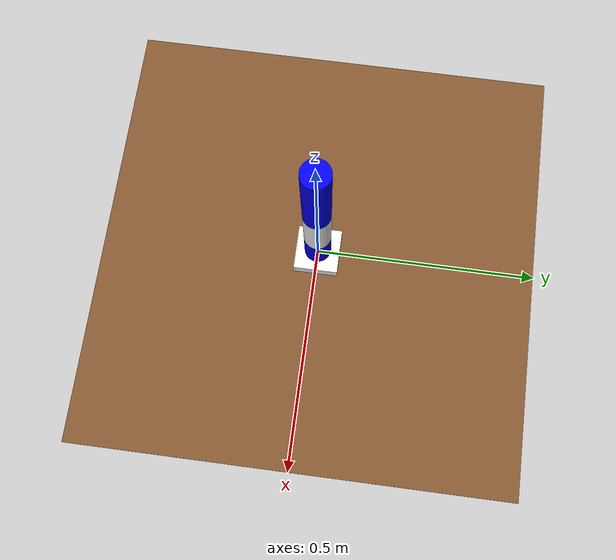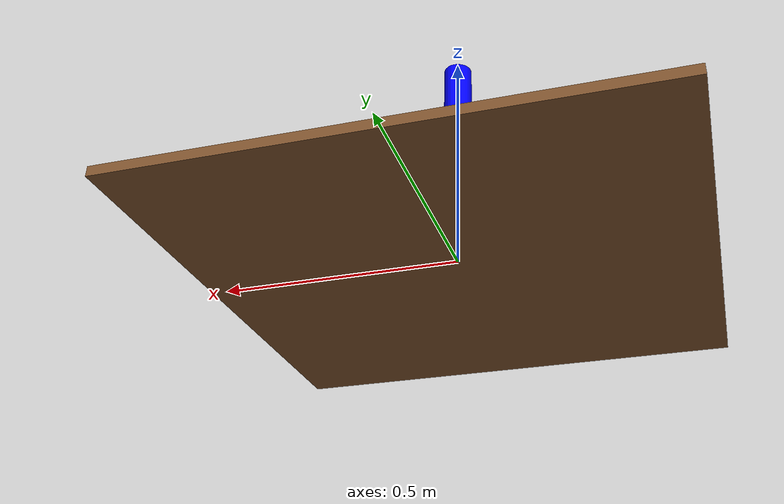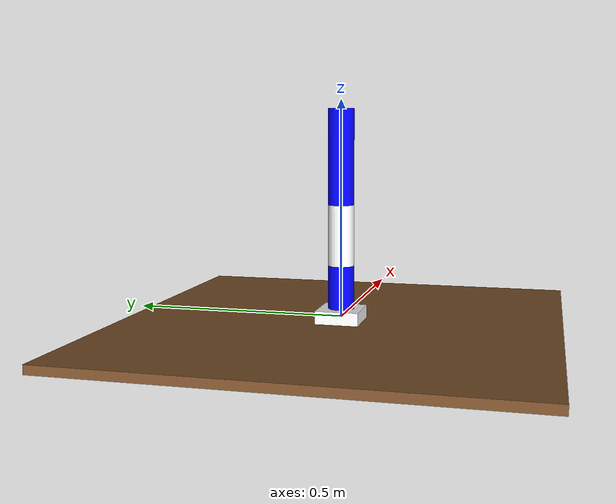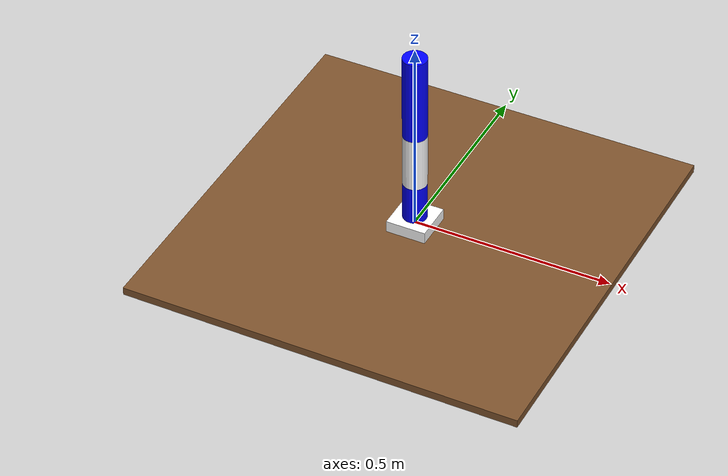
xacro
<?xml version="1.0"?>
<robot name="" xmlns:xacro="http://ros.org/wiki/xacro">

    <!-- Defining the colors used in this robot -->
    <material name="Black">
        <color rgba="0 0 0 1"/>
    </material>

    <material name="White">
        <color rgba="1 1 1 1"/>
    </material>

    <material name="Blue">
        <color rgba="0 0 1 1"/>
    </material>

    <material name="Red">
        <color rgba="1 0 0 1"/>
    </material>

    <!-- Constants -->
    <xacro:property name="M_PI" value="3.14159"/>

    <!-- link1 properties -->
    <xacro:property name="link1_width" value="0.03" />
    <xacro:property name="link1_len" value="0.10" />

    <!-- link2 properties -->
    <xacro:property name="link2_width" value="0.03" />
    <xacro:property name="link2_len" value="0.14" />

    <!-- link3 properties -->
    <xacro:property name="link3_width" value="0.03" />
    <xacro:property name="link3_len" value="0.22" />

    <!-- link4 properties -->
    <xacro:property name="link4_width" value="0.025" />
    <xacro:property name="link4_len" value="0.06" />

    <!-- link5 properties -->
    <xacro:property name="link5_width" value="0.03" />
    <xacro:property name="link5_len" value="0.06" />

    <!-- link6 properties -->
    <xacro:property name="link6_width" value="0.04" />
    <xacro:property name="link6_len" value="0.02" />

    <!-- Left gripper -->
    <xacro:property name="left_gripper_len" value="0.08" />
    <xacro:property name="left_gripper_width" value="0.01" />
    <xacro:property name="left_gripper_height" value="0.01" />

    <!-- Right gripper -->
    <xacro:property name="right_gripper_len" value="0.08" />
    <xacro:property name="right_gripper_width" value="0.01" />
    <xacro:property name="right_gripper_height" value="0.01" />

    <!-- Gripper frame -->
    <xacro:property name="grasp_frame_radius" value="0.001" />

    <!-- Inertial matrix -->
    <xacro:macro name="inertial_matrix" params="mass">
        <inertial>
            <mass value="${mass}" />
            <inertia ixx="1.0" ixy="0.0" ixz="0.0" iyy="0.5" iyz="0.0" izz="1.0" />
        </inertial>
    </xacro:macro>

    <!-- ///////////////////////////////////////   bottom_joint   ////////////////////////////////////////// -->
    <joint name="bottom_joint" type="fixed">
        <origin xyz="0 0 0" rpy="0 0 0" />
        <parent link="base_link"/>
        <child link="bottom_link"/>
    </joint>
    <link name="bottom_link">
        <visual>
              <origin xyz=" 0 0 -0.02"  rpy="0 0 0"/>
                  <geometry>
                       <box size="1 1 0.02" />
                  </geometry>
              <material name="Brown" />
        </visual>
        <collision>
            <origin xyz=" 0 0 -0.02"  rpy="0 0 0"/>
            <geometry>
                <box size="1 1 0.02" />
            </geometry>
        </collision>
        <xacro:inertial_matrix mass="500"/>
    </link>

    <!-- /////////////////////////////////////   BASE LINK    ////////////////////////////////////////////// -->
    <link name="base_link">
        <visual>
            <origin xyz="0 0 0" rpy="0 0 0" />
            <geometry>
                <box size="0.1 0.1 0.04" />
            </geometry>
            <material name="White" />
        </visual>
        <collision>
            <origin xyz="0 0 0" rpy="0 0 0" />
            <geometry>
                <box size="0.1 0.1 0.04" />
            </geometry>
        </collision>
    </link>

    <joint name="joint1" type="revolute">
        <parent link="base_link"/>
        <child link="link1"/>
        <origin xyz="0 0 0.02" rpy="0 ${M_PI/2} 0" />
        <axis xyz="-1 0 0" />
        <limit effort="300" velocity="1" lower="-2.96" upper="2.96"/>
        <dynamics damping="50" friction="1"/>
    </joint>

    <!-- /////////////////////////////////////   LINK1  ////////////////////////////////////////////// -->
    <link name="link1" >
        <visual>
            <origin xyz="-${link1_len/2} 0 0" rpy="0 ${M_PI/2} 0" />
            <geometry>
                <cylinder radius="${link1_width}" length="${link1_len}"/>
            </geometry>
            <material name="Blue" />
        </visual>
        <collision>
            <origin xyz="-${link1_len/2} 0 0" rpy="0 ${M_PI/2} 0" />
            <geometry>
                <cylinder radius="${link1_width}" length="${link1_len}"/>
            </geometry>
        </collision>
        <xacro:inertial_matrix mass="1"/>
    </link>

    <joint name="joint2" type="revolute">
        <parent link="link1"/>
        <child link="link2"/>
        <origin xyz="-${link1_len} 0 0.0" rpy="-${M_PI/2} 0 ${M_PI/2}" />
        <axis xyz="1 0 0" />
        <limit effort="300" velocity="1" lower="-2.35" upper="2.35" />
        <dynamics damping="50" friction="1"/>
    </joint>

    <!-- ///////////////////////////////////////   LINK2  ////////////////////////////////////////////// -->
    <link name="link2" >
        <visual>
            <origin xyz="0 0 ${link2_len/2}" rpy="0 0 0" />
            <geometry>
                <cylinder radius="${link2_width}" length="${link2_len}"/>
            </geometry>
            <material name="White" />
        </visual>

        <collision>
            <origin xyz="0 0 ${link2_len/2}" rpy="0 0 0" />
            <geometry>
                <cylinder radius="${link2_width}" length="${link2_len}"/>
            </geometry>
        </collision>
        <xacro:inertial_matrix mass="1"/>
    </link>

    <joint name="joint3" type="revolute">
        <parent link="link2"/>
        <child link="link3"/>
        <origin xyz="0 0 ${link2_len}" rpy="0 ${M_PI} 0" />
        <axis xyz="-1 0 0" />
        <limit effort="300" velocity="1" lower="-2.62" upper="2.62" />
        <dynamics damping="50" friction="1"/>
    </joint>

    <!-- /////////////////////////////////   LINK3  ///////////////////////////////////////////////////// -->
    <link name="link3" >
        <visual>
            <origin xyz="0 0 -${link3_len/2}" rpy="0 0 0" />
            <geometry>
                <cylinder radius="${link3_width}" length="${link3_len}"/>
            </geometry>
            <material name="Blue" />
        </visual>
        <collision>
            <origin xyz="0 0 -${link3_len/2}" rpy="0 0 0" />
            <geometry>
                <cylinder radius="${link3_width}" length="${link3_len}"/>
            </geometry>
        </collision>
        <xacro:inertial_matrix mass="1"/>
    </link>

    <!-- ///////////////////////////////////   LINK4  //////////////////////////////////////////////// -->

    <!-- //////////////////////////////////////   gripper   ////////////////////////////////////////////// -->

</robot>
